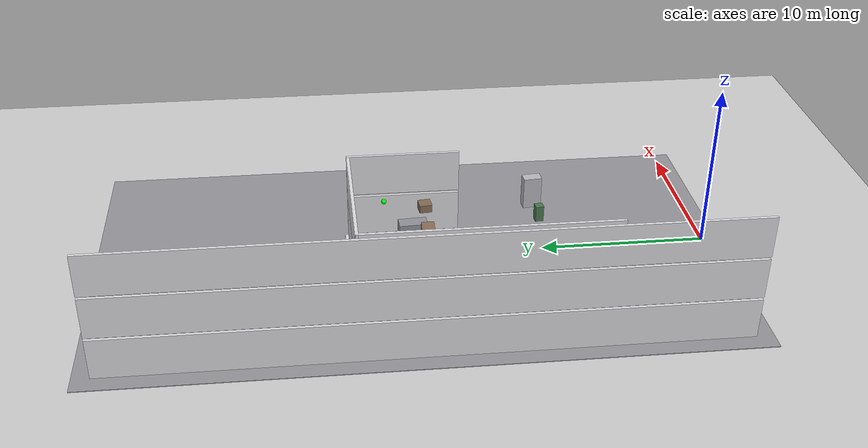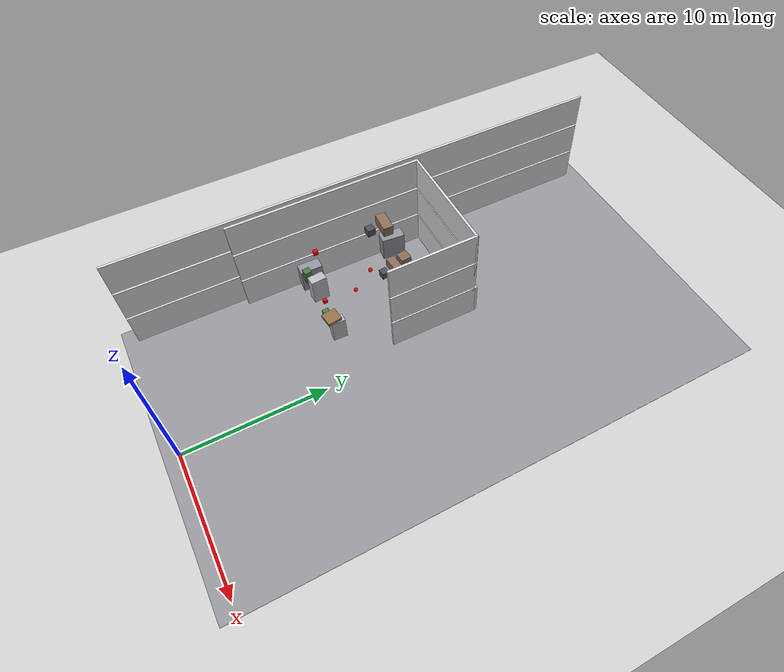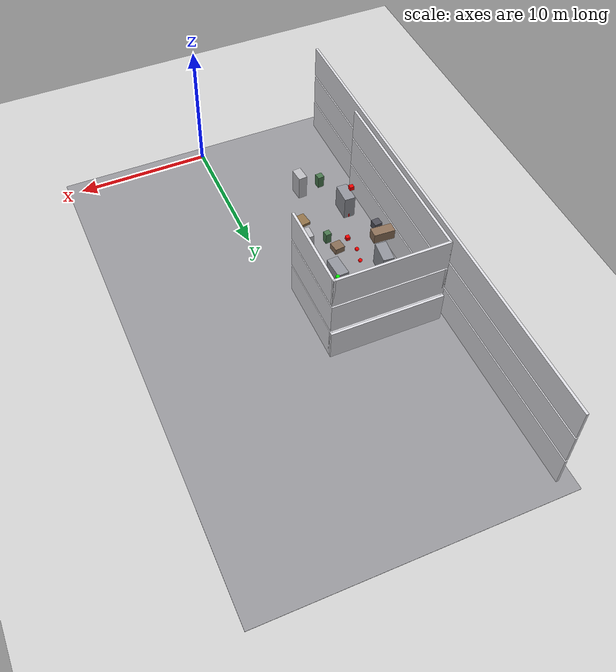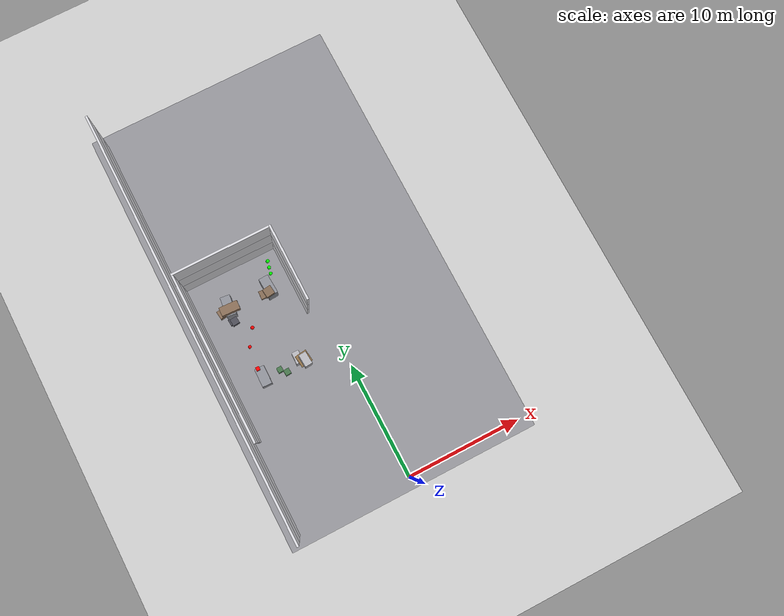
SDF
<sdf version="1.7">
 <world name="generated_world">
  <include><uri>model://sun</uri></include>
  <include><uri>model://ground_plane</uri></include>
  <model name="generated_building">
   <static>true</static>
   <link name="foundation">
    <pose>0.0000 18.0000 -0.1500 0.0000 0.0000 0.0000</pose>
    <collision name="foundation_collision">
     <geometry><box><size>22.0000 38.0000 0.3000</size></box></geometry>
    </collision>
    <visual name="foundation_visual">
     <geometry><box><size>22.0000 38.0000 0.3000</size></box></geometry>
     <material><ambient>0.58 0.58 0.60 1</ambient><diffuse>0.58 0.58 0.60 1</diffuse></material>
    </visual>
    <gravity>false</gravity>
   </link>
   <link name="exterior_west_floor_0">
    <pose>-9.9100 18.0000 1.2250 0.0000 0.0000 0.0000</pose>
    <collision name="exterior_west_floor_0_collision">
     <geometry><box><size>0.1800 36.0000 2.4500</size></box></geometry>
    </collision>
    <visual name="exterior_west_floor_0_visual">
     <geometry><box><size>0.1800 36.0000 2.4500</size></box></geometry>
     <material><ambient>0.86 0.86 0.88 1</ambient><diffuse>0.86 0.86 0.88 1</diffuse></material>
    </visual>
    <gravity>false</gravity>
   </link>
   <link name="floor_0_room_0_corridor_wall_upper">
    <pose>-1.1900 18.6725 1.2250 0.0000 0.0000 0.0000</pose>
    <collision name="floor_0_room_0_corridor_wall_upper_collision">
     <geometry><box><size>0.1800 6.4150 2.4500</size></box></geometry>
    </collision>
    <visual name="floor_0_room_0_corridor_wall_upper_visual">
     <geometry><box><size>0.1800 6.4150 2.4500</size></box></geometry>
     <material><ambient>0.86 0.86 0.88 1</ambient><diffuse>0.86 0.86 0.88 1</diffuse></material>
    </visual>
    <gravity>false</gravity>
   </link>
   <link name="floor_0_room_0_west_wall">
    <pose>-9.4100 14.8650 1.2250 0.0000 0.0000 0.0000</pose>
    <collision name="floor_0_room_0_west_wall_collision">
     <geometry><box><size>0.1800 14.0300 2.4500</size></box></geometry>
    </collision>
    <visual name="floor_0_room_0_west_wall_visual">
     <geometry><box><size>0.1800 14.0300 2.4500</size></box></geometry>
     <material><ambient>0.86 0.86 0.88 1</ambient><diffuse>0.86 0.86 0.88 1</diffuse></material>
    </visual>
    <gravity>false</gravity>
   </link>
   <link name="floor_0_room_0_north_wall">
    <pose>-5.3000 21.7900 1.2250 0.0000 0.0000 0.0000</pose>
    <collision name="floor_0_room_0_north_wall_collision">
     <geometry><box><size>8.4000 0.1800 2.4500</size></box></geometry>
    </collision>
    <visual name="floor_0_room_0_north_wall_visual">
     <geometry><box><size>8.4000 0.1800 2.4500</size></box></geometry>
     <material><ambient>0.86 0.86 0.88 1</ambient><diffuse>0.86 0.86 0.88 1</diffuse></material>
    </visual>
    <gravity>false</gravity>
   </link>
   <link name="floor_0_room_2_south_wall">
    <pose>-5.3000 21.9700 1.2250 0.0000 0.0000 0.0000</pose>
    <collision name="floor_0_room_2_south_wall_collision">
     <geometry><box><size>8.4000 0.1800 2.4500</size></box></geometry>
    </collision>
    <visual name="floor_0_room_2_south_wall_visual">
     <geometry><box><size>8.4000 0.1800 2.4500</size></box></geometry>
     <material><ambient>0.86 0.86 0.88 1</ambient><diffuse>0.86 0.86 0.88 1</diffuse></material>
    </visual>
    <gravity>false</gravity>
   </link>
   <link name="floor_0_room_0_desk">
    <pose>-7.09689446 18.6197399 0.45 0 0 0.107007869</pose>
    <collision name="floor_0_room_0_desk_collision">
     <geometry><box><size>1.5000 0.7000 0.7500</size></box></geometry>
    </collision>
    <visual name="floor_0_room_0_desk_visual">
     <geometry><box><size>1.5000 0.7000 0.7500</size></box></geometry>
     <material><ambient>0.54 0.43 0.34 1</ambient><diffuse>0.54 0.43 0.34 1</diffuse></material>
    </visual>
    <gravity>false</gravity>
   </link>
   <link name="floor_0_room_0_chair">
    <pose>-7.04202012 17.6478418 0.28 0 0 0.0865985855</pose>
    <collision name="floor_0_room_0_chair_collision">
     <geometry><box><size>0.5500 0.5500 0.5500</size></box></geometry>
    </collision>
    <visual name="floor_0_room_0_chair_visual">
     <geometry><box><size>0.5500 0.5500 0.5500</size></box></geometry>
     <material><ambient>0.30 0.30 0.34 1</ambient><diffuse>0.30 0.30 0.34 1</diffuse></material>
    </visual>
    <gravity>false</gravity>
   </link>
   <link name="floor_0_room_0_cabinet">
    <pose>-3.67033035 12.5012899 0.9 0 0 -0.0268373285</pose>
    <collision name="floor_0_room_0_cabinet_collision">
     <geometry><box><size>0.6000 1.0000 1.8000</size></box></geometry>
    </collision>
    <visual name="floor_0_room_0_cabinet_visual">
     <geometry><box><size>0.6000 1.0000 1.8000</size></box></geometry>
     <material><ambient>0.72 0.72 0.74 1</ambient><diffuse>0.72 0.72 0.74 1</diffuse></material>
    </visual>
    <gravity>false</gravity>
   </link>
   <link name="floor_0_room_0_side_table">
    <pose>-3.73748459 18.5180826 0.32 0 0 -0.0451179216</pose>
    <collision name="floor_0_room_0_side_table_collision">
     <geometry><box><size>0.7000 0.7000 0.4500</size></box></geometry>
    </collision>
    <visual name="floor_0_room_0_side_table_visual">
     <geometry><box><size>0.7000 0.7000 0.4500</size></box></geometry>
     <material><ambient>0.52 0.42 0.33 1</ambient><diffuse>0.52 0.42 0.33 1</diffuse></material>
    </visual>
    <gravity>false</gravity>
   </link>
   <link name="floor_0_room_0_planter">
    <pose>-5.36343219 12.3276635 0.45 0 0 0.0756690509</pose>
    <collision name="floor_0_room_0_planter_collision">
     <geometry><box><size>0.4500 0.4500 0.9000</size></box></geometry>
    </collision>
    <visual name="floor_0_room_0_planter_visual">
     <geometry><box><size>0.4500 0.4500 0.9000</size></box></geometry>
     <material><ambient>0.28 0.46 0.30 1</ambient><diffuse>0.28 0.46 0.30 1</diffuse></material>
    </visual>
    <gravity>false</gravity>
   </link>
   <link name="exterior_west_floor_1">
    <pose>-9.9100 18.0000 3.8250 0.0000 0.0000 0.0000</pose>
    <collision name="exterior_west_floor_1_collision">
     <geometry><box><size>0.1800 36.0000 2.4500</size></box></geometry>
    </collision>
    <visual name="exterior_west_floor_1_visual">
     <geometry><box><size>0.1800 36.0000 2.4500</size></box></geometry>
     <material><ambient>0.86 0.86 0.88 1</ambient><diffuse>0.86 0.86 0.88 1</diffuse></material>
    </visual>
    <gravity>false</gravity>
   </link>
   <link name="floor_1_room_0_corridor_wall_upper">
    <pose>-1.1900 18.6725 3.8250 0.0000 0.0000 0.0000</pose>
    <collision name="floor_1_room_0_corridor_wall_upper_collision">
     <geometry><box><size>0.1800 6.4150 2.4500</size></box></geometry>
    </collision>
    <visual name="floor_1_room_0_corridor_wall_upper_visual">
     <geometry><box><size>0.1800 6.4150 2.4500</size></box></geometry>
     <material><ambient>0.86 0.86 0.88 1</ambient><diffuse>0.86 0.86 0.88 1</diffuse></material>
    </visual>
    <gravity>false</gravity>
   </link>
   <link name="floor_1_room_0_west_wall">
    <pose>-9.4100 14.8650 3.8250 0.0000 0.0000 0.0000</pose>
    <collision name="floor_1_room_0_west_wall_collision">
     <geometry><box><size>0.1800 14.0300 2.4500</size></box></geometry>
    </collision>
    <visual name="floor_1_room_0_west_wall_visual">
     <geometry><box><size>0.1800 14.0300 2.4500</size></box></geometry>
     <material><ambient>0.86 0.86 0.88 1</ambient><diffuse>0.86 0.86 0.88 1</diffuse></material>
    </visual>
    <gravity>false</gravity>
   </link>
   <link name="floor_1_room_0_north_wall">
    <pose>-5.3000 21.7900 3.8250 0.0000 0.0000 0.0000</pose>
    <collision name="floor_1_room_0_north_wall_collision">
     <geometry><box><size>8.4000 0.1800 2.4500</size></box></geometry>
    </collision>
    <visual name="floor_1_room_0_north_wall_visual">
     <geometry><box><size>8.4000 0.1800 2.4500</size></box></geometry>
     <material><ambient>0.86 0.86 0.88 1</ambient><diffuse>0.86 0.86 0.88 1</diffuse></material>
    </visual>
    <gravity>false</gravity>
   </link>
   <link name="floor_1_room_0_rack_a">
    <pose>-6.73661441 18.3171861 3.5 0 0 -0.105137542</pose>
    <collision name="floor_1_room_0_rack_a_collision">
     <geometry><box><size>0.8000 1.6000 1.8000</size></box></geometry>
    </collision>
    <visual name="floor_1_room_0_rack_a_visual">
     <geometry><box><size>0.8000 1.6000 1.8000</size></box></geometry>
     <material><ambient>0.56 0.57 0.60 1</ambient><diffuse>0.56 0.57 0.60 1</diffuse></material>
    </visual>
    <gravity>false</gravity>
   </link>
   <link name="floor_1_room_0_rack_b">
    <pose>-3.24720876 18.29859 3.5 0 0 0.0591551628</pose>
    <collision name="floor_1_room_0_rack_b_collision">
     <geometry><box><size>0.8000 1.6000 1.8000</size></box></geometry>
    </collision>
    <visual name="floor_1_room_0_rack_b_visual">
     <geometry><box><size>0.8000 1.6000 1.8000</size></box></geometry>
     <material><ambient>0.56 0.57 0.60 1</ambient><diffuse>0.56 0.57 0.60 1</diffuse></material>
    </visual>
    <gravity>false</gravity>
   </link>
   <link name="floor_1_room_0_rack_c">
    <pose>-6.7566702 12.1727291 3.5 0 0 -0.0211116546</pose>
    <collision name="floor_1_room_0_rack_c_collision">
     <geometry><box><size>0.8000 1.5000 1.8000</size></box></geometry>
    </collision>
    <visual name="floor_1_room_0_rack_c_visual">
     <geometry><box><size>0.8000 1.5000 1.8000</size></box></geometry>
     <material><ambient>0.56 0.57 0.60 1</ambient><diffuse>0.56 0.57 0.60 1</diffuse></material>
    </visual>
    <gravity>false</gravity>
   </link>
   <link name="floor_1_room_0_pallet">
    <pose>-3.30303996 12.0847519 2.72 0 0 0.13293715</pose>
    <collision name="floor_1_room_0_pallet_collision">
     <geometry><box><size>1.0000 1.0000 0.2400</size></box></geometry>
    </collision>
    <visual name="floor_1_room_0_pallet_visual">
     <geometry><box><size>1.0000 1.0000 0.2400</size></box></geometry>
     <material><ambient>0.56 0.44 0.28 1</ambient><diffuse>0.56 0.44 0.28 1</diffuse></material>
    </visual>
    <gravity>false</gravity>
   </link>
   <link name="exterior_west_floor_2">
    <pose>-9.9100 18.0000 6.4250 0.0000 0.0000 0.0000</pose>
    <collision name="exterior_west_floor_2_collision">
     <geometry><box><size>0.1800 36.0000 2.4500</size></box></geometry>
    </collision>
    <visual name="exterior_west_floor_2_visual">
     <geometry><box><size>0.1800 36.0000 2.4500</size></box></geometry>
     <material><ambient>0.86 0.86 0.88 1</ambient><diffuse>0.86 0.86 0.88 1</diffuse></material>
    </visual>
    <gravity>false</gravity>
   </link>
   <link name="floor_2_room_0_corridor_wall_upper">
    <pose>-1.1900 18.6725 6.4250 0.0000 0.0000 0.0000</pose>
    <collision name="floor_2_room_0_corridor_wall_upper_collision">
     <geometry><box><size>0.1800 6.4150 2.4500</size></box></geometry>
    </collision>
    <visual name="floor_2_room_0_corridor_wall_upper_visual">
     <geometry><box><size>0.1800 6.4150 2.4500</size></box></geometry>
     <material><ambient>0.86 0.86 0.88 1</ambient><diffuse>0.86 0.86 0.88 1</diffuse></material>
    </visual>
    <gravity>false</gravity>
   </link>
   <link name="floor_2_room_0_west_wall">
    <pose>-9.4100 14.8650 6.4250 0.0000 0.0000 0.0000</pose>
    <collision name="floor_2_room_0_west_wall_collision">
     <geometry><box><size>0.1800 14.0300 2.4500</size></box></geometry>
    </collision>
    <visual name="floor_2_room_0_west_wall_visual">
     <geometry><box><size>0.1800 14.0300 2.4500</size></box></geometry>
     <material><ambient>0.86 0.86 0.88 1</ambient><diffuse>0.86 0.86 0.88 1</diffuse></material>
    </visual>
    <gravity>false</gravity>
   </link>
   <link name="floor_2_room_0_north_wall">
    <pose>-5.3000 21.7900 6.4250 0.0000 0.0000 0.0000</pose>
    <collision name="floor_2_room_0_north_wall_collision">
     <geometry><box><size>8.4000 0.1800 2.4500</size></box></geometry>
    </collision>
    <visual name="floor_2_room_0_north_wall_visual">
     <geometry><box><size>8.4000 0.1800 2.4500</size></box></geometry>
     <material><ambient>0.86 0.86 0.88 1</ambient><diffuse>0.86 0.86 0.88 1</diffuse></material>
    </visual>
    <gravity>false</gravity>
   </link>
   <link name="floor_2_room_0_desk">
    <pose>-6.70500522 17.8166297 5.65 0 0 -0.0470481193</pose>
    <collision name="floor_2_room_0_desk_collision">
     <geometry><box><size>1.5000 0.7000 0.7500</size></box></geometry>
    </collision>
    <visual name="floor_2_room_0_desk_visual">
     <geometry><box><size>1.5000 0.7000 0.7500</size></box></geometry>
     <material><ambient>0.54 0.43 0.34 1</ambient><diffuse>0.54 0.43 0.34 1</diffuse></material>
    </visual>
    <gravity>false</gravity>
   </link>
   <link name="floor_2_room_0_chair">
    <pose>-6.78992468 16.7785874 5.48 0 0 0.0836266788</pose>
    <collision name="floor_2_room_0_chair_collision">
     <geometry><box><size>0.5500 0.5500 0.5500</size></box></geometry>
    </collision>
    <visual name="floor_2_room_0_chair_visual">
     <geometry><box><size>0.5500 0.5500 0.5500</size></box></geometry>
     <material><ambient>0.30 0.30 0.34 1</ambient><diffuse>0.30 0.30 0.34 1</diffuse></material>
    </visual>
    <gravity>false</gravity>
   </link>
   <link name="floor_2_room_0_cabinet">
    <pose>-3.35437662 11.6523771 6.1 0 0 0.0746470875</pose>
    <collision name="floor_2_room_0_cabinet_collision">
     <geometry><box><size>0.6000 1.0000 1.8000</size></box></geometry>
    </collision>
    <visual name="floor_2_room_0_cabinet_visual">
     <geometry><box><size>0.6000 1.0000 1.8000</size></box></geometry>
     <material><ambient>0.72 0.72 0.74 1</ambient><diffuse>0.72 0.72 0.74 1</diffuse></material>
    </visual>
    <gravity>false</gravity>
   </link>
   <link name="floor_2_room_0_side_table">
    <pose>-3.46782247 17.6624601 5.52 0 0 0.110891192</pose>
    <collision name="floor_2_room_0_side_table_collision">
     <geometry><box><size>0.7000 0.7000 0.4500</size></box></geometry>
    </collision>
    <visual name="floor_2_room_0_side_table_visual">
     <geometry><box><size>0.7000 0.7000 0.4500</size></box></geometry>
     <material><ambient>0.52 0.42 0.33 1</ambient><diffuse>0.52 0.42 0.33 1</diffuse></material>
    </visual>
    <gravity>false</gravity>
   </link>
   <link name="floor_2_room_0_planter">
    <pose>-4.96289891 11.5042169 5.65 0 0 0.0823595939</pose>
    <collision name="floor_2_room_0_planter_collision">
     <geometry><box><size>0.4500 0.4500 0.9000</size></box></geometry>
    </collision>
    <visual name="floor_2_room_0_planter_visual">
     <geometry><box><size>0.4500 0.4500 0.9000</size></box></geometry>
     <material><ambient>0.28 0.46 0.30 1</ambient><diffuse>0.28 0.46 0.30 1</diffuse></material>
    </visual>
    <gravity>false</gravity>
   </link>
  </model>
  <model name="distractor_red_box_01">
   <static>true</static>
   <pose>-6.841038 12.773479 0.150000 0.000000 0.000000 0.000000</pose>
   <link name="link">
    <collision name="collision">
     <geometry><box><size>0.300000 0.300000 0.300000</size></box></geometry>
    </collision>
    <visual name="visual">
     <geometry><box><size>0.300000 0.300000 0.300000</size></box></geometry>
     <material><ambient>1.0 0.0 0.0 1.0</ambient><diffuse>1.0 0.0 0.0 1.0</diffuse></material>
    </visual>
   </link>
  </model>
  <model name="danger_red_sphere_01">
   <static>true</static>
   <pose>-6.7219174 15.1593536 0.15 0 0 0</pose>
   <link name="link">
    <collision name="collision"><geometry><sphere><radius>0.150</radius></sphere></geometry></collision>
    <visual name="visual">
     <geometry><sphere><radius>0.150</radius></sphere></geometry>
     <material><ambient>1.0 0.0 0.0 1.0</ambient><diffuse>1.0 0.0 0.0 1.0</diffuse></material>
    </visual>
   </link>
  </model>
  <model name="distractor_green_sphere_03">
   <static>true</static>
   <pose>-2.452365 19.870128 0.150000 0.000000 0.000000 0.000000</pose>
   <link name="link">
    <collision name="collision"><geometry><sphere><radius>0.150</radius></sphere></geometry></collision>
    <visual name="visual">
     <geometry><sphere><radius>0.150</radius></sphere></geometry>
     <material><ambient>0.0 1.0 0.0 1.0</ambient><diffuse>0.0 1.0 0.0 1.0</diffuse></material>
    </visual>
   </link>
  </model>
  <model name="danger_red_sphere_00_floor_1">
   <static>true</static>
   <pose>-5.81767603 16.1269342 2.75 0 0 0</pose>
   <link name="link">
    <collision name="collision"><geometry><sphere><radius>0.150</radius></sphere></geometry></collision>
    <visual name="visual">
     <geometry><sphere><radius>0.150</radius></sphere></geometry>
     <material><ambient>1.0 0.0 0.0 1.0</ambient><diffuse>1.0 0.0 0.0 1.0</diffuse></material>
    </visual>
   </link>
  </model>
  <model name="distractor_red_box_01_floor_1">
   <static>true</static>
   <pose>-6.841038 12.773479 2.750000 0.000000 0.000000 0.000000</pose>
   <link name="link">
    <collision name="collision">
     <geometry><box><size>0.300000 0.300000 0.300000</size></box></geometry>
    </collision>
    <visual name="visual">
     <geometry><box><size>0.300000 0.300000 0.300000</size></box></geometry>
     <material><ambient>1.0 0.0 0.0 1.0</ambient><diffuse>1.0 0.0 0.0 1.0</diffuse></material>
    </visual>
   </link>
  </model>
  <model name="distractor_green_sphere_03_floor_1">
   <static>true</static>
   <pose>-2.452365 19.870128 2.750000 0.000000 0.000000 0.000000</pose>
   <link name="link">
    <collision name="collision"><geometry><sphere><radius>0.150</radius></sphere></geometry></collision>
    <visual name="visual">
     <geometry><sphere><radius>0.150</radius></sphere></geometry>
     <material><ambient>0.0 1.0 0.0 1.0</ambient><diffuse>0.0 1.0 0.0 1.0</diffuse></material>
    </visual>
   </link>
  </model>
  <model name="distractor_red_box_01_floor_2">
   <static>true</static>
   <pose>-6.841038 12.773479 5.350000 0.000000 0.000000 0.000000</pose>
   <link name="link">
    <collision name="collision">
     <geometry><box><size>0.300000 0.300000 0.300000</size></box></geometry>
    </collision>
    <visual name="visual">
     <geometry><box><size>0.300000 0.300000 0.300000</size></box></geometry>
     <material><ambient>1.0 0.0 0.0 1.0</ambient><diffuse>1.0 0.0 0.0 1.0</diffuse></material>
    </visual>
   </link>
  </model>
  <model name="distractor_green_sphere_03_floor_2">
   <static>true</static>
   <pose>-2.452365 19.870128 5.350000 0.000000 0.000000 0.000000</pose>
   <link name="link">
    <collision name="collision"><geometry><sphere><radius>0.150</radius></sphere></geometry></collision>
    <visual name="visual">
     <geometry><sphere><radius>0.150</radius></sphere></geometry>
     <material><ambient>0.0 1.0 0.0 1.0</ambient><diffuse>0.0 1.0 0.0 1.0</diffuse></material>
    </visual>
   </link>
  </model>
 </world>
</sdf>
